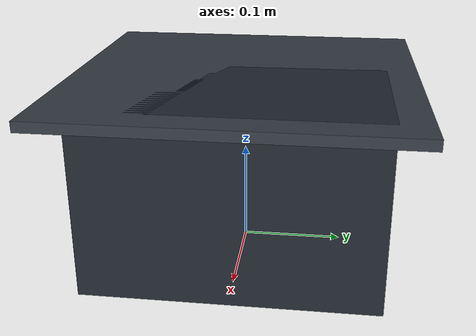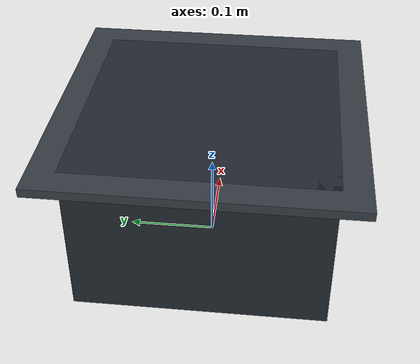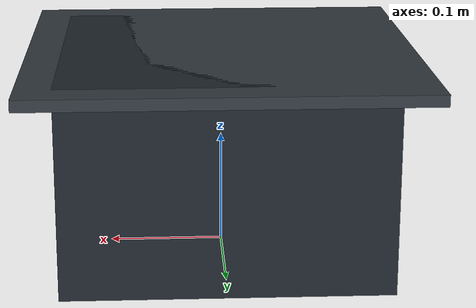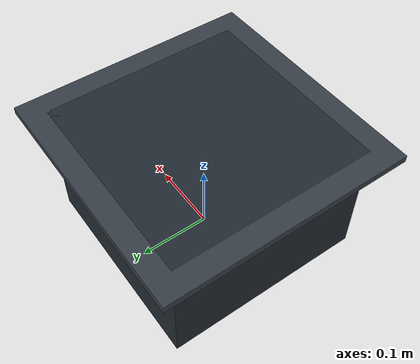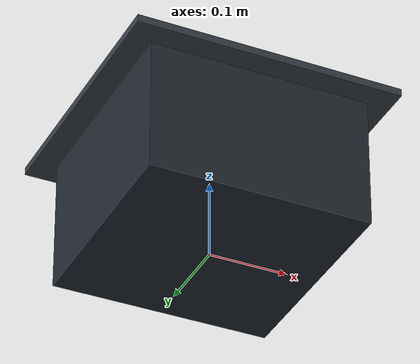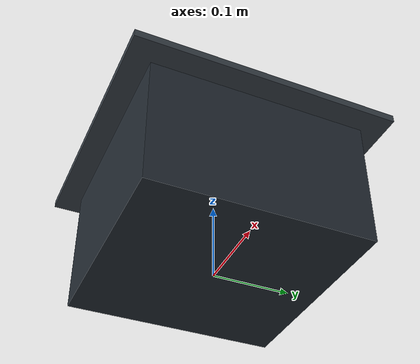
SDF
<?xml version="1.0"?>
<sdf version="1.8">
  <model name="sensoragent_robot_base_frame">
    <static>true</static>
    <link name="pedestal">
      <collision name="body_collision">
        <pose>0 0 0.09 0 0 0</pose>
        <geometry><box><size>0.28 0.28 0.18</size></box></geometry>
      </collision>
      <visual name="body_visual">
        <pose>0 0 0.09 0 0 0</pose>
        <geometry><box><size>0.28 0.28 0.18</size></box></geometry>
        <material>
          <ambient>0.10 0.12 0.14 1</ambient>
          <diffuse>0.14 0.17 0.20 1</diffuse>
          <specular>0.30 0.30 0.30 1</specular>
        </material>
      </visual>
      <visual name="top_plate_visual">
        <pose>0 0 0.175 0 0 0</pose>
        <geometry><box><size>0.34 0.34 0.01</size></box></geometry>
        <material>
          <ambient>0.16 0.18 0.20 1</ambient>
          <diffuse>0.22 0.25 0.28 1</diffuse>
          <specular>0.45 0.45 0.45 1</specular>
        </material>
      </visual>
    </link>
  </model>
</sdf>
